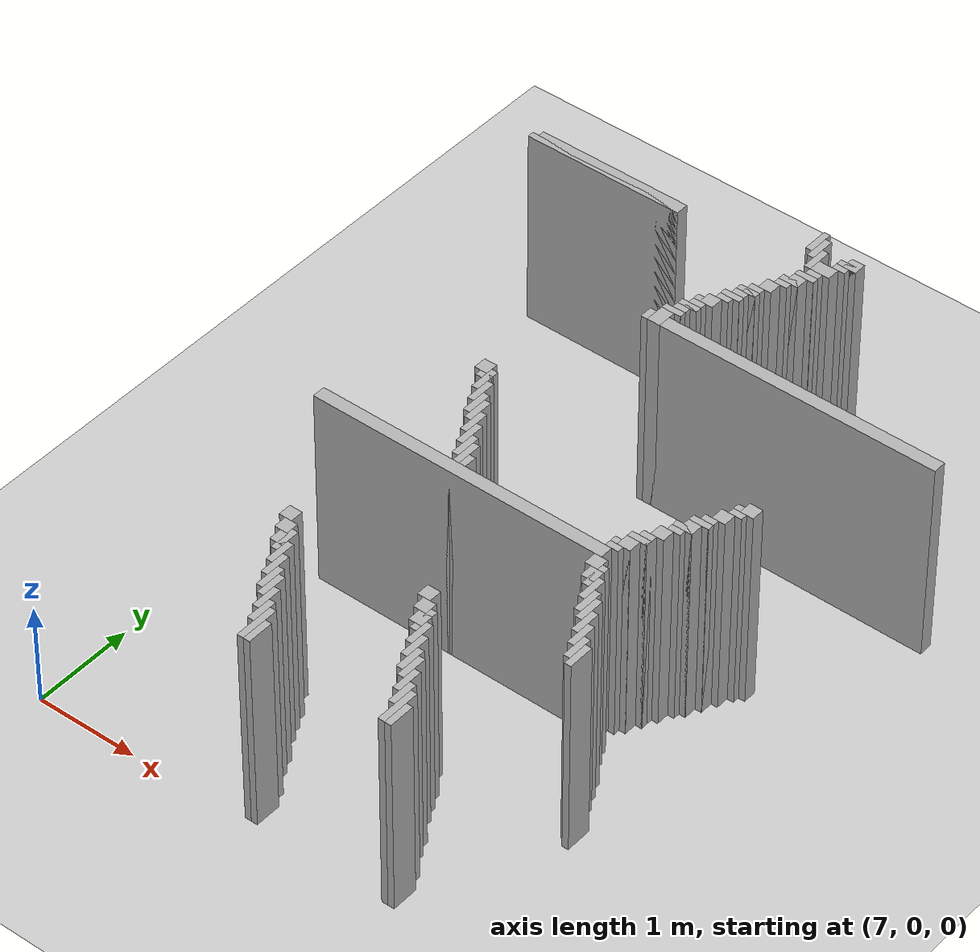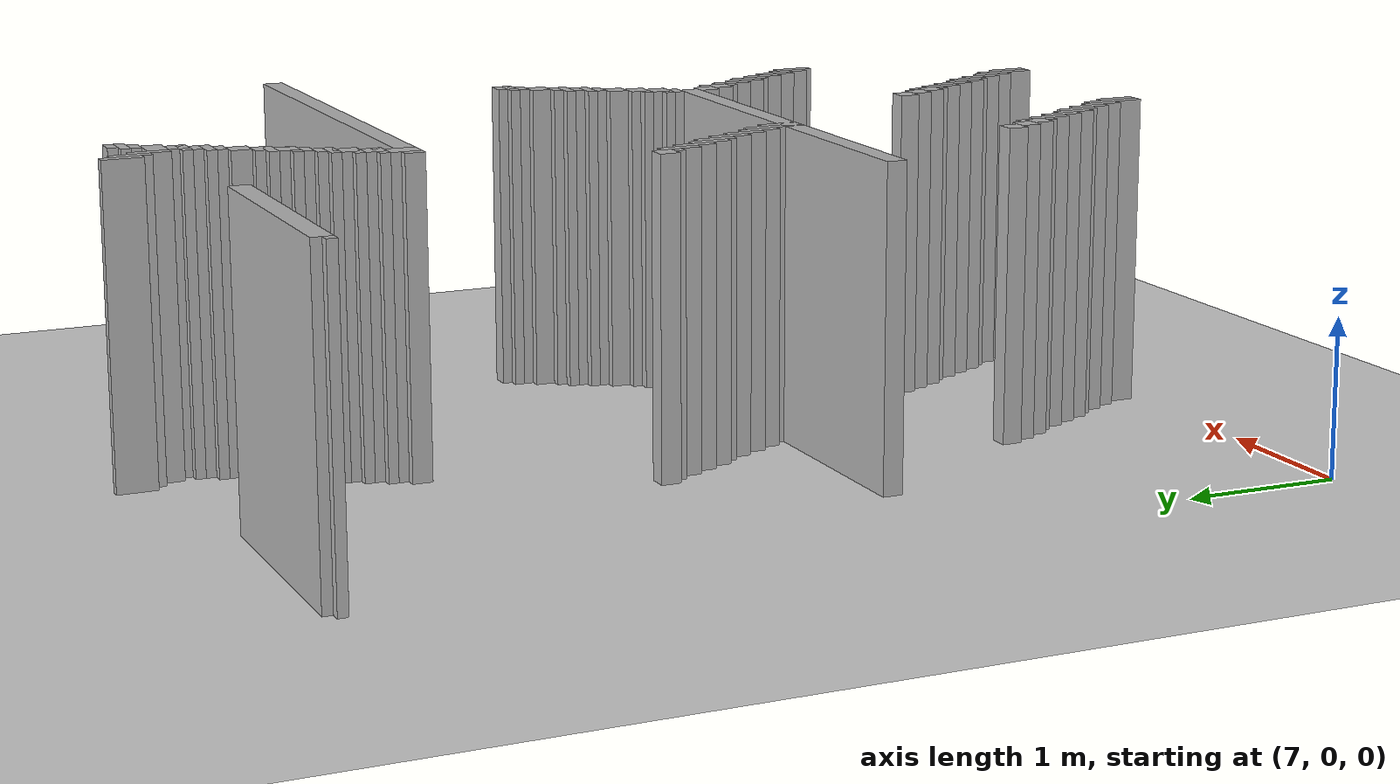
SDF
<sdf version="1.6">
 <world name="slam_world">
  <model name="ground_plane">
   <static>true</static>
   <link name="link">
    <collision name="collision">
     <geometry><plane><normal>0 0 1</normal><size>100 100</size></plane></geometry>
    </collision>
    <visual name="visual">
     <geometry><plane><normal>0 0 1</normal><size>100 100</size></plane></geometry>
     <material>
      <ambient>0.8 0.8 0.8 1</ambient>
      <diffuse>0.8 0.8 0.8 1</diffuse>
      <specular>0.8 0.8 0.8 1</specular>
     </material>
    </visual>
   </link>
  </model>
  <model name="wall_1690">
   <static>true</static>
   <pose>9.734042553191488 6.574468085106383 1.0 0 0 0</pose>
   <link name="link">
    <collision name="collision">
     <geometry><box><size>0.06382978723404255 0.2553191489361702 2.0</size></box></geometry>
    </collision>
    <visual name="visual">
     <geometry><box><size>0.06382978723404255 0.2553191489361702 2.0</size></box></geometry>
     <material><ambient>0.5 0.5 0.5 1</ambient><diffuse>0.7 0.7 0.7 1</diffuse></material>
    </visual>
   </link>
  </model>
  <model name="wall_1698">
   <static>true</static>
   <pose>9.797872340425531 6.51063829787234 1.0 0 0 0</pose>
   <link name="link">
    <collision name="collision">
     <geometry><box><size>0.06382978723404255 0.2553191489361702 2.0</size></box></geometry>
    </collision>
    <visual name="visual">
     <geometry><box><size>0.06382978723404255 0.2553191489361702 2.0</size></box></geometry>
     <material><ambient>0.5 0.5 0.5 1</ambient><diffuse>0.7 0.7 0.7 1</diffuse></material>
    </visual>
   </link>
  </model>
  <model name="wall_1705">
   <static>true</static>
   <pose>10.148936170212766 6.51063829787234 1.0 0 0 0</pose>
   <link name="link">
    <collision name="collision">
     <geometry><box><size>0.1276595744680851 0.1276595744680851 2.0</size></box></geometry>
    </collision>
    <visual name="visual">
     <geometry><box><size>0.1276595744680851 0.1276595744680851 2.0</size></box></geometry>
     <material><ambient>0.5 0.5 0.5 1</ambient><diffuse>0.7 0.7 0.7 1</diffuse></material>
    </visual>
   </link>
  </model>
  <model name="wall_1710">
   <static>true</static>
   <pose>9.861702127659573 6.382978723404255 1.0 0 0 0</pose>
   <link name="link">
    <collision name="collision">
     <geometry><box><size>0.06382978723404255 0.2553191489361702 2.0</size></box></geometry>
    </collision>
    <visual name="visual">
     <geometry><box><size>0.06382978723404255 0.2553191489361702 2.0</size></box></geometry>
     <material><ambient>0.5 0.5 0.5 1</ambient><diffuse>0.7 0.7 0.7 1</diffuse></material>
    </visual>
   </link>
  </model>
  <model name="wall_1711">
   <static>true</static>
   <pose>10.117021276595743 6.478723404255319 1.0 0 0 0</pose>
   <link name="link">
    <collision name="collision">
     <geometry><box><size>0.19148936170212766 0.06382978723404255 2.0</size></box></geometry>
    </collision>
    <visual name="visual">
     <geometry><box><size>0.19148936170212766 0.06382978723404255 2.0</size></box></geometry>
     <material><ambient>0.5 0.5 0.5 1</ambient><diffuse>0.7 0.7 0.7 1</diffuse></material>
    </visual>
   </link>
  </model>
  <model name="wall_1717">
   <static>true</static>
   <pose>10.085106382978722 6.414893617021276 1.0 0 0 0</pose>
   <link name="link">
    <collision name="collision">
     <geometry><box><size>0.1276595744680851 0.06382978723404255 2.0</size></box></geometry>
    </collision>
    <visual name="visual">
     <geometry><box><size>0.1276595744680851 0.06382978723404255 2.0</size></box></geometry>
     <material><ambient>0.5 0.5 0.5 1</ambient><diffuse>0.7 0.7 0.7 1</diffuse></material>
    </visual>
   </link>
  </model>
  <model name="wall_1722">
   <static>true</static>
   <pose>9.989361702127658 6.319148936170213 1.0 0 0 0</pose>
   <link name="link">
    <collision name="collision">
     <geometry><box><size>0.19148936170212766 0.1276595744680851 2.0</size></box></geometry>
    </collision>
    <visual name="visual">
     <geometry><box><size>0.19148936170212766 0.1276595744680851 2.0</size></box></geometry>
     <material><ambient>0.5 0.5 0.5 1</ambient><diffuse>0.7 0.7 0.7 1</diffuse></material>
    </visual>
   </link>
  </model>
  <model name="wall_1729">
   <static>true</static>
   <pose>7.8510638297872335 6.191489361702128 1.0 0 0 0</pose>
   <link name="link">
    <collision name="collision">
     <geometry><box><size>1.5319148936170213 0.1276595744680851 2.0</size></box></geometry>
    </collision>
    <visual name="visual">
     <geometry><box><size>1.5319148936170213 0.1276595744680851 2.0</size></box></geometry>
     <material><ambient>0.5 0.5 0.5 1</ambient><diffuse>0.7 0.7 0.7 1</diffuse></material>
    </visual>
   </link>
  </model>
  <model name="wall_1730">
   <static>true</static>
   <pose>9.957446808510637 6.191489361702128 1.0 0 0 0</pose>
   <link name="link">
    <collision name="collision">
     <geometry><box><size>0.1276595744680851 0.1276595744680851 2.0</size></box></geometry>
    </collision>
    <visual name="visual">
     <geometry><box><size>0.1276595744680851 0.1276595744680851 2.0</size></box></geometry>
     <material><ambient>0.5 0.5 0.5 1</ambient><diffuse>0.7 0.7 0.7 1</diffuse></material>
    </visual>
   </link>
  </model>
  <model name="wall_1734">
   <static>true</static>
   <pose>7.819148936170212 6.159574468085106 1.0 0 0 0</pose>
   <link name="link">
    <collision name="collision">
     <geometry><box><size>1.5957446808510638 0.06382978723404255 2.0</size></box></geometry>
    </collision>
    <visual name="visual">
     <geometry><box><size>1.5957446808510638 0.06382978723404255 2.0</size></box></geometry>
     <material><ambient>0.5 0.5 0.5 1</ambient><diffuse>0.7 0.7 0.7 1</diffuse></material>
    </visual>
   </link>
  </model>
  <model name="wall_1735">
   <static>true</static>
   <pose>9.925531914893616 6.159574468085106 1.0 0 0 0</pose>
   <link name="link">
    <collision name="collision">
     <geometry><box><size>0.19148936170212766 0.06382978723404255 2.0</size></box></geometry>
    </collision>
    <visual name="visual">
     <geometry><box><size>0.19148936170212766 0.06382978723404255 2.0</size></box></geometry>
     <material><ambient>0.5 0.5 0.5 1</ambient><diffuse>0.7 0.7 0.7 1</diffuse></material>
    </visual>
   </link>
  </model>
  <model name="wall_1741">
   <static>true</static>
   <pose>9.893617021276595 6.063829787234042 1.0 0 0 0</pose>
   <link name="link">
    <collision name="collision">
     <geometry><box><size>0.1276595744680851 0.1276595744680851 2.0</size></box></geometry>
    </collision>
    <visual name="visual">
     <geometry><box><size>0.1276595744680851 0.1276595744680851 2.0</size></box></geometry>
     <material><ambient>0.5 0.5 0.5 1</ambient><diffuse>0.7 0.7 0.7 1</diffuse></material>
    </visual>
   </link>
  </model>
  <model name="wall_1746">
   <static>true</static>
   <pose>9.861702127659573 6.031914893617021 1.0 0 0 0</pose>
   <link name="link">
    <collision name="collision">
     <geometry><box><size>0.19148936170212766 0.06382978723404255 2.0</size></box></geometry>
    </collision>
    <visual name="visual">
     <geometry><box><size>0.19148936170212766 0.06382978723404255 2.0</size></box></geometry>
     <material><ambient>0.5 0.5 0.5 1</ambient><diffuse>0.7 0.7 0.7 1</diffuse></material>
    </visual>
   </link>
  </model>
  <model name="wall_1753">
   <static>true</static>
   <pose>9.829787234042552 5.968085106382978 1.0 0 0 0</pose>
   <link name="link">
    <collision name="collision">
     <geometry><box><size>0.1276595744680851 0.06382978723404255 2.0</size></box></geometry>
    </collision>
    <visual name="visual">
     <geometry><box><size>0.1276595744680851 0.06382978723404255 2.0</size></box></geometry>
     <material><ambient>0.5 0.5 0.5 1</ambient><diffuse>0.7 0.7 0.7 1</diffuse></material>
    </visual>
   </link>
  </model>
  <model name="wall_1762">
   <static>true</static>
   <pose>9.76595744680851 5.872340425531914 1.0 0 0 0</pose>
   <link name="link">
    <collision name="collision">
     <geometry><box><size>0.1276595744680851 0.1276595744680851 2.0</size></box></geometry>
    </collision>
    <visual name="visual">
     <geometry><box><size>0.1276595744680851 0.1276595744680851 2.0</size></box></geometry>
     <material><ambient>0.5 0.5 0.5 1</ambient><diffuse>0.7 0.7 0.7 1</diffuse></material>
    </visual>
   </link>
  </model>
  <model name="wall_1771">
   <static>true</static>
   <pose>9.702127659574467 5.744680851063829 1.0 0 0 0</pose>
   <link name="link">
    <collision name="collision">
     <geometry><box><size>0.1276595744680851 0.1276595744680851 2.0</size></box></geometry>
    </collision>
    <visual name="visual">
     <geometry><box><size>0.1276595744680851 0.1276595744680851 2.0</size></box></geometry>
     <material><ambient>0.5 0.5 0.5 1</ambient><diffuse>0.7 0.7 0.7 1</diffuse></material>
    </visual>
   </link>
  </model>
  <model name="wall_1780">
   <static>true</static>
   <pose>9.670212765957446 5.712765957446808 1.0 0 0 0</pose>
   <link name="link">
    <collision name="collision">
     <geometry><box><size>0.19148936170212766 0.06382978723404255 2.0</size></box></geometry>
    </collision>
    <visual name="visual">
     <geometry><box><size>0.19148936170212766 0.06382978723404255 2.0</size></box></geometry>
     <material><ambient>0.5 0.5 0.5 1</ambient><diffuse>0.7 0.7 0.7 1</diffuse></material>
    </visual>
   </link>
  </model>
  <model name="wall_1787">
   <static>true</static>
   <pose>9.638297872340425 5.617021276595744 1.0 0 0 0</pose>
   <link name="link">
    <collision name="collision">
     <geometry><box><size>0.1276595744680851 0.1276595744680851 2.0</size></box></geometry>
    </collision>
    <visual name="visual">
     <geometry><box><size>0.1276595744680851 0.1276595744680851 2.0</size></box></geometry>
     <material><ambient>0.5 0.5 0.5 1</ambient><diffuse>0.7 0.7 0.7 1</diffuse></material>
    </visual>
   </link>
  </model>
  <model name="wall_1795">
   <static>true</static>
   <pose>9.606382978723403 5.585106382978723 1.0 0 0 0</pose>
   <link name="link">
    <collision name="collision">
     <geometry><box><size>0.19148936170212766 0.06382978723404255 2.0</size></box></geometry>
    </collision>
    <visual name="visual">
     <geometry><box><size>0.19148936170212766 0.06382978723404255 2.0</size></box></geometry>
     <material><ambient>0.5 0.5 0.5 1</ambient><diffuse>0.7 0.7 0.7 1</diffuse></material>
    </visual>
   </link>
  </model>
  <model name="wall_1802">
   <static>true</static>
   <pose>9.574468085106382 5.5212765957446805 1.0 0 0 0</pose>
   <link name="link">
    <collision name="collision">
     <geometry><box><size>0.1276595744680851 0.06382978723404255 2.0</size></box></geometry>
    </collision>
    <visual name="visual">
     <geometry><box><size>0.1276595744680851 0.06382978723404255 2.0</size></box></geometry>
     <material><ambient>0.5 0.5 0.5 1</ambient><diffuse>0.7 0.7 0.7 1</diffuse></material>
    </visual>
   </link>
  </model>
  <model name="wall_1809">
   <static>true</static>
   <pose>9.51063829787234 5.425531914893616 1.0 0 0 0</pose>
   <link name="link">
    <collision name="collision">
     <geometry><box><size>0.1276595744680851 0.1276595744680851 2.0</size></box></geometry>
    </collision>
    <visual name="visual">
     <geometry><box><size>0.1276595744680851 0.1276595744680851 2.0</size></box></geometry>
     <material><ambient>0.5 0.5 0.5 1</ambient><diffuse>0.7 0.7 0.7 1</diffuse></material>
    </visual>
   </link>
  </model>
  <model name="wall_1816">
   <static>true</static>
   <pose>9.478723404255318 5.3936170212765955 1.0 0 0 0</pose>
   <link name="link">
    <collision name="collision">
     <geometry><box><size>0.19148936170212766 0.06382978723404255 2.0</size></box></geometry>
    </collision>
    <visual name="visual">
     <geometry><box><size>0.19148936170212766 0.06382978723404255 2.0</size></box></geometry>
     <material><ambient>0.5 0.5 0.5 1</ambient><diffuse>0.7 0.7 0.7 1</diffuse></material>
    </visual>
   </link>
  </model>
  <model name="wall_1823">
   <static>true</static>
   <pose>9.446808510638297 5.297872340425531 1.0 0 0 0</pose>
   <link name="link">
    <collision name="collision">
     <geometry><box><size>0.1276595744680851 0.1276595744680851 2.0</size></box></geometry>
    </collision>
    <visual name="visual">
     <geometry><box><size>0.1276595744680851 0.1276595744680851 2.0</size></box></geometry>
     <material><ambient>0.5 0.5 0.5 1</ambient><diffuse>0.7 0.7 0.7 1</diffuse></material>
    </visual>
   </link>
  </model>
  <model name="wall_1832">
   <static>true</static>
   <pose>9.414893617021276 5.26595744680851 1.0 0 0 0</pose>
   <link name="link">
    <collision name="collision">
     <geometry><box><size>0.19148936170212766 0.06382978723404255 2.0</size></box></geometry>
    </collision>
    <visual name="visual">
     <geometry><box><size>0.19148936170212766 0.06382978723404255 2.0</size></box></geometry>
     <material><ambient>0.5 0.5 0.5 1</ambient><diffuse>0.7 0.7 0.7 1</diffuse></material>
    </visual>
   </link>
  </model>
  <model name="wall_1839">
   <static>true</static>
   <pose>9.382978723404255 5.170212765957446 1.0 0 0 0</pose>
   <link name="link">
    <collision name="collision">
     <geometry><box><size>0.1276595744680851 0.1276595744680851 2.0</size></box></geometry>
    </collision>
    <visual name="visual">
     <geometry><box><size>0.1276595744680851 0.1276595744680851 2.0</size></box></geometry>
     <material><ambient>0.5 0.5 0.5 1</ambient><diffuse>0.7 0.7 0.7 1</diffuse></material>
    </visual>
   </link>
  </model>
  <model name="wall_1846">
   <static>true</static>
   <pose>9.351063829787233 5.138297872340425 1.0 0 0 0</pose>
   <link name="link">
    <collision name="collision">
     <geometry><box><size>0.19148936170212766 0.06382978723404255 2.0</size></box></geometry>
    </collision>
    <visual name="visual">
     <geometry><box><size>0.19148936170212766 0.06382978723404255 2.0</size></box></geometry>
     <material><ambient>0.5 0.5 0.5 1</ambient><diffuse>0.7 0.7 0.7 1</diffuse></material>
    </visual>
   </link>
  </model>
  <model name="wall_1853">
   <static>true</static>
   <pose>9.319148936170212 5.01063829787234 1.0 0 0 0</pose>
   <link name="link">
    <collision name="collision">
     <geometry><box><size>0.1276595744680851 0.19148936170212766 2.0</size></box></geometry>
    </collision>
    <visual name="visual">
     <geometry><box><size>0.1276595744680851 0.19148936170212766 2.0</size></box></geometry>
     <material><ambient>0.5 0.5 0.5 1</ambient><diffuse>0.7 0.7 0.7 1</diffuse></material>
    </visual>
   </link>
  </model>
  <model name="wall_1859">
   <static>true</static>
   <pose>10.659574468085106 4.978723404255319 1.0 0 0 0</pose>
   <link name="link">
    <collision name="collision">
     <geometry><box><size>2.936170212765957 0.1276595744680851 2.0</size></box></geometry>
    </collision>
    <visual name="visual">
     <geometry><box><size>2.936170212765957 0.1276595744680851 2.0</size></box></geometry>
     <material><ambient>0.5 0.5 0.5 1</ambient><diffuse>0.7 0.7 0.7 1</diffuse></material>
    </visual>
   </link>
  </model>
  <model name="wall_1964">
   <static>true</static>
   <pose>8.617021276595745 3.6382978723404253 1.0 0 0 0</pose>
   <link name="link">
    <collision name="collision">
     <geometry><box><size>0.1276595744680851 0.1276595744680851 2.0</size></box></geometry>
    </collision>
    <visual name="visual">
     <geometry><box><size>0.1276595744680851 0.1276595744680851 2.0</size></box></geometry>
     <material><ambient>0.5 0.5 0.5 1</ambient><diffuse>0.7 0.7 0.7 1</diffuse></material>
    </visual>
   </link>
  </model>
  <model name="wall_1965">
   <static>true</static>
   <pose>11.297872340425531 3.6382978723404253 1.0 0 0 0</pose>
   <link name="link">
    <collision name="collision">
     <geometry><box><size>0.1276595744680851 0.1276595744680851 2.0</size></box></geometry>
    </collision>
    <visual name="visual">
     <geometry><box><size>0.1276595744680851 0.1276595744680851 2.0</size></box></geometry>
     <material><ambient>0.5 0.5 0.5 1</ambient><diffuse>0.7 0.7 0.7 1</diffuse></material>
    </visual>
   </link>
  </model>
  <model name="wall_1971">
   <static>true</static>
   <pose>8.712765957446807 3.5106382978723403 1.0 0 0 0</pose>
   <link name="link">
    <collision name="collision">
     <geometry><box><size>0.06382978723404255 0.2553191489361702 2.0</size></box></geometry>
    </collision>
    <visual name="visual">
     <geometry><box><size>0.06382978723404255 0.2553191489361702 2.0</size></box></geometry>
     <material><ambient>0.5 0.5 0.5 1</ambient><diffuse>0.7 0.7 0.7 1</diffuse></material>
    </visual>
   </link>
  </model>
  <model name="wall_1972">
   <static>true</static>
   <pose>11.26595744680851 3.606382978723404 1.0 0 0 0</pose>
   <link name="link">
    <collision name="collision">
     <geometry><box><size>0.19148936170212766 0.06382978723404255 2.0</size></box></geometry>
    </collision>
    <visual name="visual">
     <geometry><box><size>0.19148936170212766 0.06382978723404255 2.0</size></box></geometry>
     <material><ambient>0.5 0.5 0.5 1</ambient><diffuse>0.7 0.7 0.7 1</diffuse></material>
    </visual>
   </link>
  </model>
  <model name="wall_1977">
   <static>true</static>
   <pose>8.680851063829786 3.5425531914893615 1.0 0 0 0</pose>
   <link name="link">
    <collision name="collision">
     <geometry><box><size>0.1276595744680851 0.06382978723404255 2.0</size></box></geometry>
    </collision>
    <visual name="visual">
     <geometry><box><size>0.1276595744680851 0.06382978723404255 2.0</size></box></geometry>
     <material><ambient>0.5 0.5 0.5 1</ambient><diffuse>0.7 0.7 0.7 1</diffuse></material>
    </visual>
   </link>
  </model>
  <model name="wall_1978">
   <static>true</static>
   <pose>11.234042553191488 3.5425531914893615 1.0 0 0 0</pose>
   <link name="link">
    <collision name="collision">
     <geometry><box><size>0.1276595744680851 0.06382978723404255 2.0</size></box></geometry>
    </collision>
    <visual name="visual">
     <geometry><box><size>0.1276595744680851 0.06382978723404255 2.0</size></box></geometry>
     <material><ambient>0.5 0.5 0.5 1</ambient><diffuse>0.7 0.7 0.7 1</diffuse></material>
    </visual>
   </link>
  </model>
  <model name="wall_1982">
   <static>true</static>
   <pose>8.77659574468085 3.382978723404255 1.0 0 0 0</pose>
   <link name="link">
    <collision name="collision">
     <geometry><box><size>0.06382978723404255 0.2553191489361702 2.0</size></box></geometry>
    </collision>
    <visual name="visual">
     <geometry><box><size>0.06382978723404255 0.2553191489361702 2.0</size></box></geometry>
     <material><ambient>0.5 0.5 0.5 1</ambient><diffuse>0.7 0.7 0.7 1</diffuse></material>
    </visual>
   </link>
  </model>
  <model name="wall_1983">
   <static>true</static>
   <pose>11.170212765957446 3.4468085106382977 1.0 0 0 0</pose>
   <link name="link">
    <collision name="collision">
     <geometry><box><size>0.1276595744680851 0.1276595744680851 2.0</size></box></geometry>
    </collision>
    <visual name="visual">
     <geometry><box><size>0.1276595744680851 0.1276595744680851 2.0</size></box></geometry>
     <material><ambient>0.5 0.5 0.5 1</ambient><diffuse>0.7 0.7 0.7 1</diffuse></material>
    </visual>
   </link>
  </model>
  <model name="wall_1989">
   <static>true</static>
   <pose>8.840425531914892 3.25531914893617 1.0 0 0 0</pose>
   <link name="link">
    <collision name="collision">
     <geometry><box><size>0.06382978723404255 0.2553191489361702 2.0</size></box></geometry>
    </collision>
    <visual name="visual">
     <geometry><box><size>0.06382978723404255 0.2553191489361702 2.0</size></box></geometry>
     <material><ambient>0.5 0.5 0.5 1</ambient><diffuse>0.7 0.7 0.7 1</diffuse></material>
    </visual>
   </link>
  </model>
  <model name="wall_1990">
   <static>true</static>
   <pose>11.106382978723403 3.3191489361702127 1.0 0 0 0</pose>
   <link name="link">
    <collision name="collision">
     <geometry><box><size>0.1276595744680851 0.1276595744680851 2.0</size></box></geometry>
    </collision>
    <visual name="visual">
     <geometry><box><size>0.1276595744680851 0.1276595744680851 2.0</size></box></geometry>
     <material><ambient>0.5 0.5 0.5 1</ambient><diffuse>0.7 0.7 0.7 1</diffuse></material>
    </visual>
   </link>
  </model>
  <model name="wall_1996">
   <static>true</static>
   <pose>8.904255319148936 3.1914893617021276 1.0 0 0 0</pose>
   <link name="link">
    <collision name="collision">
     <geometry><box><size>0.06382978723404255 0.2553191489361702 2.0</size></box></geometry>
    </collision>
    <visual name="visual">
     <geometry><box><size>0.06382978723404255 0.2553191489361702 2.0</size></box></geometry>
     <material><ambient>0.5 0.5 0.5 1</ambient><diffuse>0.7 0.7 0.7 1</diffuse></material>
    </visual>
   </link>
  </model>
  <model name="wall_1997">
   <static>true</static>
   <pose>11.074468085106382 3.2872340425531914 1.0 0 0 0</pose>
   <link name="link">
    <collision name="collision">
     <geometry><box><size>0.19148936170212766 0.06382978723404255 2.0</size></box></geometry>
    </collision>
    <visual name="visual">
     <geometry><box><size>0.19148936170212766 0.06382978723404255 2.0</size></box></geometry>
     <material><ambient>0.5 0.5 0.5 1</ambient><diffuse>0.7 0.7 0.7 1</diffuse></material>
    </visual>
   </link>
  </model>
  <model name="wall_2000">
   <static>true</static>
   <pose>11.042553191489361 3.1914893617021276 1.0 0 0 0</pose>
   <link name="link">
    <collision name="collision">
     <geometry><box><size>0.1276595744680851 0.1276595744680851 2.0</size></box></geometry>
    </collision>
    <visual name="visual">
     <geometry><box><size>0.1276595744680851 0.1276595744680851 2.0</size></box></geometry>
     <material><ambient>0.5 0.5 0.5 1</ambient><diffuse>0.7 0.7 0.7 1</diffuse></material>
    </visual>
   </link>
  </model>
  <model name="wall_2004">
   <static>true</static>
   <pose>8.968085106382977 3.0638297872340425 1.0 0 0 0</pose>
   <link name="link">
    <collision name="collision">
     <geometry><box><size>0.06382978723404255 0.2553191489361702 2.0</size></box></geometry>
    </collision>
    <visual name="visual">
     <geometry><box><size>0.06382978723404255 0.2553191489361702 2.0</size></box></geometry>
     <material><ambient>0.5 0.5 0.5 1</ambient><diffuse>0.7 0.7 0.7 1</diffuse></material>
    </visual>
   </link>
  </model>
  <model name="wall_2005">
   <static>true</static>
   <pose>11.01063829787234 3.1595744680851063 1.0 0 0 0</pose>
   <link name="link">
    <collision name="collision">
     <geometry><box><size>0.19148936170212766 0.06382978723404255 2.0</size></box></geometry>
    </collision>
    <visual name="visual">
     <geometry><box><size>0.19148936170212766 0.06382978723404255 2.0</size></box></geometry>
     <material><ambient>0.5 0.5 0.5 1</ambient><diffuse>0.7 0.7 0.7 1</diffuse></material>
    </visual>
   </link>
  </model>
  <model name="wall_2008">
   <static>true</static>
   <pose>10.978723404255318 3.095744680851064 1.0 0 0 0</pose>
   <link name="link">
    <collision name="collision">
     <geometry><box><size>0.1276595744680851 0.06382978723404255 2.0</size></box></geometry>
    </collision>
    <visual name="visual">
     <geometry><box><size>0.1276595744680851 0.06382978723404255 2.0</size></box></geometry>
     <material><ambient>0.5 0.5 0.5 1</ambient><diffuse>0.7 0.7 0.7 1</diffuse></material>
    </visual>
   </link>
  </model>
  <model name="wall_2012">
   <static>true</static>
   <pose>9.03191489361702 2.936170212765957 1.0 0 0 0</pose>
   <link name="link">
    <collision name="collision">
     <geometry><box><size>0.06382978723404255 0.2553191489361702 2.0</size></box></geometry>
    </collision>
    <visual name="visual">
     <geometry><box><size>0.06382978723404255 0.2553191489361702 2.0</size></box></geometry>
     <material><ambient>0.5 0.5 0.5 1</ambient><diffuse>0.7 0.7 0.7 1</diffuse></material>
    </visual>
   </link>
  </model>
  <model name="wall_2013">
   <static>true</static>
   <pose>10.914893617021276 2.9999999999999996 1.0 0 0 0</pose>
   <link name="link">
    <collision name="collision">
     <geometry><box><size>0.1276595744680851 0.1276595744680851 2.0</size></box></geometry>
    </collision>
    <visual name="visual">
     <geometry><box><size>0.1276595744680851 0.1276595744680851 2.0</size></box></geometry>
     <material><ambient>0.5 0.5 0.5 1</ambient><diffuse>0.7 0.7 0.7 1</diffuse></material>
    </visual>
   </link>
  </model>
  <model name="wall_2019">
   <static>true</static>
   <pose>9.095744680851062 2.808510638297872 1.0 0 0 0</pose>
   <link name="link">
    <collision name="collision">
     <geometry><box><size>0.06382978723404255 0.2553191489361702 2.0</size></box></geometry>
    </collision>
    <visual name="visual">
     <geometry><box><size>0.06382978723404255 0.2553191489361702 2.0</size></box></geometry>
     <material><ambient>0.5 0.5 0.5 1</ambient><diffuse>0.7 0.7 0.7 1</diffuse></material>
    </visual>
   </link>
  </model>
  <model name="wall_2020">
   <static>true</static>
   <pose>10.851063829787233 2.8723404255319145 1.0 0 0 0</pose>
   <link name="link">
    <collision name="collision">
     <geometry><box><size>0.1276595744680851 0.1276595744680851 2.0</size></box></geometry>
    </collision>
    <visual name="visual">
     <geometry><box><size>0.1276595744680851 0.1276595744680851 2.0</size></box></geometry>
     <material><ambient>0.5 0.5 0.5 1</ambient><diffuse>0.7 0.7 0.7 1</diffuse></material>
    </visual>
   </link>
  </model>
  <model name="wall_2026">
   <static>true</static>
   <pose>9.159574468085106 2.680851063829787 1.0 0 0 0</pose>
   <link name="link">
    <collision name="collision">
     <geometry><box><size>0.06382978723404255 0.3829787234042553 2.0</size></box></geometry>
    </collision>
    <visual name="visual">
     <geometry><box><size>0.06382978723404255 0.3829787234042553 2.0</size></box></geometry>
     <material><ambient>0.5 0.5 0.5 1</ambient><diffuse>0.7 0.7 0.7 1</diffuse></material>
    </visual>
   </link>
  </model>
  <model name="wall_2027">
   <static>true</static>
   <pose>10.819148936170212 2.840425531914893 1.0 0 0 0</pose>
   <link name="link">
    <collision name="collision">
     <geometry><box><size>0.19148936170212766 0.06382978723404255 2.0</size></box></geometry>
    </collision>
    <visual name="visual">
     <geometry><box><size>0.19148936170212766 0.06382978723404255 2.0</size></box></geometry>
     <material><ambient>0.5 0.5 0.5 1</ambient><diffuse>0.7 0.7 0.7 1</diffuse></material>
    </visual>
   </link>
  </model>
  <model name="wall_2030">
   <static>true</static>
   <pose>10.787234042553191 2.7446808510638294 1.0 0 0 0</pose>
   <link name="link">
    <collision name="collision">
     <geometry><box><size>0.1276595744680851 0.1276595744680851 2.0</size></box></geometry>
    </collision>
    <visual name="visual">
     <geometry><box><size>0.1276595744680851 0.1276595744680851 2.0</size></box></geometry>
     <material><ambient>0.5 0.5 0.5 1</ambient><diffuse>0.7 0.7 0.7 1</diffuse></material>
    </visual>
   </link>
  </model>
  <model name="wall_2034">
   <static>true</static>
   <pose>9.223404255319148 2.6170212765957444 1.0 0 0 0</pose>
   <link name="link">
    <collision name="collision">
     <geometry><box><size>0.06382978723404255 0.2553191489361702 2.0</size></box></geometry>
    </collision>
    <visual name="visual">
     <geometry><box><size>0.06382978723404255 0.2553191489361702 2.0</size></box></geometry>
     <material><ambient>0.5 0.5 0.5 1</ambient><diffuse>0.7 0.7 0.7 1</diffuse></material>
    </visual>
   </link>
  </model>
  <model name="wall_2035">
   <static>true</static>
   <pose>10.75531914893617 2.712765957446808 1.0 0 0 0</pose>
   <link name="link">
    <collision name="collision">
     <geometry><box><size>0.19148936170212766 0.06382978723404255 2.0</size></box></geometry>
    </collision>
    <visual name="visual">
     <geometry><box><size>0.19148936170212766 0.06382978723404255 2.0</size></box></geometry>
     <material><ambient>0.5 0.5 0.5 1</ambient><diffuse>0.7 0.7 0.7 1</diffuse></material>
    </visual>
   </link>
  </model>
  <model name="wall_2038">
   <static>true</static>
   <pose>10.723404255319148 2.6489361702127656 1.0 0 0 0</pose>
   <link name="link">
    <collision name="collision">
     <geometry><box><size>0.1276595744680851 0.06382978723404255 2.0</size></box></geometry>
    </collision>
    <visual name="visual">
     <geometry><box><size>0.1276595744680851 0.06382978723404255 2.0</size></box></geometry>
     <material><ambient>0.5 0.5 0.5 1</ambient><diffuse>0.7 0.7 0.7 1</diffuse></material>
    </visual>
   </link>
  </model>
  <model name="wall_2042">
   <static>true</static>
   <pose>9.25531914893617 2.553191489361702 1.0 0 0 0</pose>
   <link name="link">
    <collision name="collision">
     <geometry><box><size>2.936170212765957 0.1276595744680851 2.0</size></box></geometry>
    </collision>
    <visual name="visual">
     <geometry><box><size>2.936170212765957 0.1276595744680851 2.0</size></box></geometry>
     <material><ambient>0.5 0.5 0.5 1</ambient><diffuse>0.7 0.7 0.7 1</diffuse></material>
    </visual>
   </link>
  </model>
  <model name="wall_2049">
   <static>true</static>
   <pose>10.723404255319148 2.4255319148936167 1.0 0 0 0</pose>
   <link name="link">
    <collision name="collision">
     <geometry><box><size>0.1276595744680851 0.1276595744680851 2.0</size></box></geometry>
    </collision>
    <visual name="visual">
     <geometry><box><size>0.1276595744680851 0.1276595744680851 2.0</size></box></geometry>
     <material><ambient>0.5 0.5 0.5 1</ambient><diffuse>0.7 0.7 0.7 1</diffuse></material>
    </visual>
   </link>
  </model>
  <model name="wall_2055">
   <static>true</static>
   <pose>10.819148936170212 2.2978723404255317 1.0 0 0 0</pose>
   <link name="link">
    <collision name="collision">
     <geometry><box><size>0.06382978723404255 0.2553191489361702 2.0</size></box></geometry>
    </collision>
    <visual name="visual">
     <geometry><box><size>0.06382978723404255 0.2553191489361702 2.0</size></box></geometry>
     <material><ambient>0.5 0.5 0.5 1</ambient><diffuse>0.7 0.7 0.7 1</diffuse></material>
    </visual>
   </link>
  </model>
  <model name="wall_2060">
   <static>true</static>
   <pose>10.787234042553191 2.2978723404255317 1.0 0 0 0</pose>
   <link name="link">
    <collision name="collision">
     <geometry><box><size>0.1276595744680851 0.1276595744680851 2.0</size></box></geometry>
    </collision>
    <visual name="visual">
     <geometry><box><size>0.1276595744680851 0.1276595744680851 2.0</size></box></geometry>
     <material><ambient>0.5 0.5 0.5 1</ambient><diffuse>0.7 0.7 0.7 1</diffuse></material>
    </visual>
   </link>
  </model>
  <model name="wall_2066">
   <static>true</static>
   <pose>10.882978723404255 2.1702127659574466 1.0 0 0 0</pose>
   <link name="link">
    <collision name="collision">
     <geometry><box><size>0.06382978723404255 0.2553191489361702 2.0</size></box></geometry>
    </collision>
    <visual name="visual">
     <geometry><box><size>0.06382978723404255 0.2553191489361702 2.0</size></box></geometry>
     <material><ambient>0.5 0.5 0.5 1</ambient><diffuse>0.7 0.7 0.7 1</diffuse></material>
    </visual>
   </link>
  </model>
  <model name="wall_2074">
   <static>true</static>
   <pose>10.946808510638297 2.0425531914893615 1.0 0 0 0</pose>
   <link name="link">
    <collision name="collision">
     <geometry><box><size>0.06382978723404255 0.2553191489361702 2.0</size></box></geometry>
    </collision>
    <visual name="visual">
     <geometry><box><size>0.06382978723404255 0.2553191489361702 2.0</size></box></geometry>
     <material><ambient>0.5 0.5 0.5 1</ambient><diffuse>0.7 0.7 0.7 1</diffuse></material>
    </visual>
   </link>
  </model>
  <model name="wall_2080">
   <static>true</static>
   <pose>11.01063829787234 1.978723404255319 1.0 0 0 0</pose>
   <link name="link">
    <collision name="collision">
     <geometry><box><size>0.06382978723404255 0.2553191489361702 2.0</size></box></geometry>
    </collision>
    <visual name="visual">
     <geometry><box><size>0.06382978723404255 0.2553191489361702 2.0</size></box></geometry>
     <material><ambient>0.5 0.5 0.5 1</ambient><diffuse>0.7 0.7 0.7 1</diffuse></material>
    </visual>
   </link>
  </model>
  <model name="wall_2088">
   <static>true</static>
   <pose>11.074468085106382 1.851063829787234 1.0 0 0 0</pose>
   <link name="link">
    <collision name="collision">
     <geometry><box><size>0.06382978723404255 0.2553191489361702 2.0</size></box></geometry>
    </collision>
    <visual name="visual">
     <geometry><box><size>0.06382978723404255 0.2553191489361702 2.0</size></box></geometry>
     <material><ambient>0.5 0.5 0.5 1</ambient><diffuse>0.7 0.7 0.7 1</diffuse></material>
    </visual>
   </link>
  </model>
  <model name="wall_2096">
   <static>true</static>
   <pose>11.138297872340425 1.7234042553191489 1.0 0 0 0</pose>
   <link name="link">
    <collision name="collision">
     <geometry><box><size>0.06382978723404255 0.2553191489361702 2.0</size></box></geometry>
    </collision>
    <visual name="visual">
     <geometry><box><size>0.06382978723404255 0.2553191489361702 2.0</size></box></geometry>
     <material><ambient>0.5 0.5 0.5 1</ambient><diffuse>0.7 0.7 0.7 1</diffuse></material>
    </visual>
   </link>
  </model>
  <model name="wall_2102">
   <static>true</static>
   <pose>11.202127659574467 1.5957446808510638 1.0 0 0 0</pose>
   <link name="link">
    <collision name="collision">
     <geometry><box><size>0.06382978723404255 0.2553191489361702 2.0</size></box></geometry>
    </collision>
    <visual name="visual">
     <geometry><box><size>0.06382978723404255 0.2553191489361702 2.0</size></box></geometry>
     <material><ambient>0.5 0.5 0.5 1</ambient><diffuse>0.7 0.7 0.7 1</diffuse></material>
    </visual>
   </link>
  </model>
  <model name="wall_2108">
   <static>true</static>
   <pose>11.26595744680851 1.5319148936170213 1.0 0 0 0</pose>
   <link name="link">
    <collision name="collision">
     <geometry><box><size>0.06382978723404255 0.2553191489361702 2.0</size></box></geometry>
    </collision>
    <visual name="visual">
     <geometry><box><size>0.06382978723404255 0.2553191489361702 2.0</size></box></geometry>
     <material><ambient>0.5 0.5 0.5 1</ambient><diffuse>0.7 0.7 0.7 1</diffuse></material>
    </visual>
   </link>
  </model>
  <model name="wall_2127">
   <static>true</static>
   <pose>8.553191489361701 1.3404255319148934 1.0 0 0 0</pose>
   <link name="link">
    <collision name="collision">
     <geometry><box><size>0.1276595744680851 0.1276595744680851 2.0</size></box></geometry>
    </collision>
    <visual name="visual">
     <geometry><box><size>0.1276595744680851 0.1276595744680851 2.0</size></box></geometry>
     <material><ambient>0.5 0.5 0.5 1</ambient><diffuse>0.7 0.7 0.7 1</diffuse></material>
    </visual>
   </link>
  </model>
  <model name="wall_2128">
   <static>true</static>
   <pose>9.957446808510637 1.3404255319148934 1.0 0 0 0</pose>
   <link name="link">
    <collision name="collision">
     <geometry><box><size>0.1276595744680851 0.1276595744680851 2.0</size></box></geometry>
    </collision>
    <visual name="visual">
     <geometry><box><size>0.1276595744680851 0.1276595744680851 2.0</size></box></geometry>
     <material><ambient>0.5 0.5 0.5 1</ambient><diffuse>0.7 0.7 0.7 1</diffuse></material>
    </visual>
   </link>
  </model>
  <model name="wall_2136">
   <static>true</static>
   <pose>8.617021276595745 1.2127659574468084 1.0 0 0 0</pose>
   <link name="link">
    <collision name="collision">
     <geometry><box><size>0.1276595744680851 0.1276595744680851 2.0</size></box></geometry>
    </collision>
    <visual name="visual">
     <geometry><box><size>0.1276595744680851 0.1276595744680851 2.0</size></box></geometry>
     <material><ambient>0.5 0.5 0.5 1</ambient><diffuse>0.7 0.7 0.7 1</diffuse></material>
    </visual>
   </link>
  </model>
  <model name="wall_2137">
   <static>true</static>
   <pose>10.02127659574468 1.2127659574468084 1.0 0 0 0</pose>
   <link name="link">
    <collision name="collision">
     <geometry><box><size>0.1276595744680851 0.1276595744680851 2.0</size></box></geometry>
    </collision>
    <visual name="visual">
     <geometry><box><size>0.1276595744680851 0.1276595744680851 2.0</size></box></geometry>
     <material><ambient>0.5 0.5 0.5 1</ambient><diffuse>0.7 0.7 0.7 1</diffuse></material>
    </visual>
   </link>
  </model>
  <model name="wall_2144">
   <static>true</static>
   <pose>8.712765957446807 1.0851063829787233 1.0 0 0 0</pose>
   <link name="link">
    <collision name="collision">
     <geometry><box><size>0.06382978723404255 0.2553191489361702 2.0</size></box></geometry>
    </collision>
    <visual name="visual">
     <geometry><box><size>0.06382978723404255 0.2553191489361702 2.0</size></box></geometry>
     <material><ambient>0.5 0.5 0.5 1</ambient><diffuse>0.7 0.7 0.7 1</diffuse></material>
    </visual>
   </link>
  </model>
  <model name="wall_2145">
   <static>true</static>
   <pose>10.117021276595743 1.0851063829787233 1.0 0 0 0</pose>
   <link name="link">
    <collision name="collision">
     <geometry><box><size>0.06382978723404255 0.2553191489361702 2.0</size></box></geometry>
    </collision>
    <visual name="visual">
     <geometry><box><size>0.06382978723404255 0.2553191489361702 2.0</size></box></geometry>
     <material><ambient>0.5 0.5 0.5 1</ambient><diffuse>0.7 0.7 0.7 1</diffuse></material>
    </visual>
   </link>
  </model>
  <model name="wall_2152">
   <static>true</static>
   <pose>8.680851063829786 1.0851063829787233 1.0 0 0 0</pose>
   <link name="link">
    <collision name="collision">
     <geometry><box><size>0.1276595744680851 0.1276595744680851 2.0</size></box></geometry>
    </collision>
    <visual name="visual">
     <geometry><box><size>0.1276595744680851 0.1276595744680851 2.0</size></box></geometry>
     <material><ambient>0.5 0.5 0.5 1</ambient><diffuse>0.7 0.7 0.7 1</diffuse></material>
    </visual>
   </link>
  </model>
  <model name="wall_2153">
   <static>true</static>
   <pose>10.085106382978722 1.0851063829787233 1.0 0 0 0</pose>
   <link name="link">
    <collision name="collision">
     <geometry><box><size>0.1276595744680851 0.1276595744680851 2.0</size></box></geometry>
    </collision>
    <visual name="visual">
     <geometry><box><size>0.1276595744680851 0.1276595744680851 2.0</size></box></geometry>
     <material><ambient>0.5 0.5 0.5 1</ambient><diffuse>0.7 0.7 0.7 1</diffuse></material>
    </visual>
   </link>
  </model>
  <model name="wall_2159">
   <static>true</static>
   <pose>8.77659574468085 0.9574468085106382 1.0 0 0 0</pose>
   <link name="link">
    <collision name="collision">
     <geometry><box><size>0.06382978723404255 0.2553191489361702 2.0</size></box></geometry>
    </collision>
    <visual name="visual">
     <geometry><box><size>0.06382978723404255 0.2553191489361702 2.0</size></box></geometry>
     <material><ambient>0.5 0.5 0.5 1</ambient><diffuse>0.7 0.7 0.7 1</diffuse></material>
    </visual>
   </link>
  </model>
  <model name="wall_2160">
   <static>true</static>
   <pose>10.180851063829786 0.9574468085106382 1.0 0 0 0</pose>
   <link name="link">
    <collision name="collision">
     <geometry><box><size>0.06382978723404255 0.2553191489361702 2.0</size></box></geometry>
    </collision>
    <visual name="visual">
     <geometry><box><size>0.06382978723404255 0.2553191489361702 2.0</size></box></geometry>
     <material><ambient>0.5 0.5 0.5 1</ambient><diffuse>0.7 0.7 0.7 1</diffuse></material>
    </visual>
   </link>
  </model>
  <model name="wall_2170">
   <static>true</static>
   <pose>8.840425531914892 0.8297872340425532 1.0 0 0 0</pose>
   <link name="link">
    <collision name="collision">
     <geometry><box><size>0.06382978723404255 0.2553191489361702 2.0</size></box></geometry>
    </collision>
    <visual name="visual">
     <geometry><box><size>0.06382978723404255 0.2553191489361702 2.0</size></box></geometry>
     <material><ambient>0.5 0.5 0.5 1</ambient><diffuse>0.7 0.7 0.7 1</diffuse></material>
    </visual>
   </link>
  </model>
  <model name="wall_2171">
   <static>true</static>
   <pose>10.24468085106383 0.8297872340425532 1.0 0 0 0</pose>
   <link name="link">
    <collision name="collision">
     <geometry><box><size>0.06382978723404255 0.2553191489361702 2.0</size></box></geometry>
    </collision>
    <visual name="visual">
     <geometry><box><size>0.06382978723404255 0.2553191489361702 2.0</size></box></geometry>
     <material><ambient>0.5 0.5 0.5 1</ambient><diffuse>0.7 0.7 0.7 1</diffuse></material>
    </visual>
   </link>
  </model>
  <model name="wall_2178">
   <static>true</static>
   <pose>8.904255319148936 0.702127659574468 1.0 0 0 0</pose>
   <link name="link">
    <collision name="collision">
     <geometry><box><size>0.06382978723404255 0.2553191489361702 2.0</size></box></geometry>
    </collision>
    <visual name="visual">
     <geometry><box><size>0.06382978723404255 0.2553191489361702 2.0</size></box></geometry>
     <material><ambient>0.5 0.5 0.5 1</ambient><diffuse>0.7 0.7 0.7 1</diffuse></material>
    </visual>
   </link>
  </model>
  <model name="wall_2179">
   <static>true</static>
   <pose>10.308510638297872 0.702127659574468 1.0 0 0 0</pose>
   <link name="link">
    <collision name="collision">
     <geometry><box><size>0.06382978723404255 0.2553191489361702 2.0</size></box></geometry>
    </collision>
    <visual name="visual">
     <geometry><box><size>0.06382978723404255 0.2553191489361702 2.0</size></box></geometry>
     <material><ambient>0.5 0.5 0.5 1</ambient><diffuse>0.7 0.7 0.7 1</diffuse></material>
    </visual>
   </link>
  </model>
  <model name="wall_2186">
   <static>true</static>
   <pose>8.968085106382977 0.6382978723404255 1.0 0 0 0</pose>
   <link name="link">
    <collision name="collision">
     <geometry><box><size>0.06382978723404255 0.2553191489361702 2.0</size></box></geometry>
    </collision>
    <visual name="visual">
     <geometry><box><size>0.06382978723404255 0.2553191489361702 2.0</size></box></geometry>
     <material><ambient>0.5 0.5 0.5 1</ambient><diffuse>0.7 0.7 0.7 1</diffuse></material>
    </visual>
   </link>
  </model>
  <model name="wall_2187">
   <static>true</static>
   <pose>10.372340425531915 0.6382978723404255 1.0 0 0 0</pose>
   <link name="link">
    <collision name="collision">
     <geometry><box><size>0.06382978723404255 0.2553191489361702 2.0</size></box></geometry>
    </collision>
    <visual name="visual">
     <geometry><box><size>0.06382978723404255 0.2553191489361702 2.0</size></box></geometry>
     <material><ambient>0.5 0.5 0.5 1</ambient><diffuse>0.7 0.7 0.7 1</diffuse></material>
    </visual>
   </link>
  </model>
  <model name="wall_2197">
   <static>true</static>
   <pose>9.03191489361702 0.5106382978723404 1.0 0 0 0</pose>
   <link name="link">
    <collision name="collision">
     <geometry><box><size>0.06382978723404255 0.2553191489361702 2.0</size></box></geometry>
    </collision>
    <visual name="visual">
     <geometry><box><size>0.06382978723404255 0.2553191489361702 2.0</size></box></geometry>
     <material><ambient>0.5 0.5 0.5 1</ambient><diffuse>0.7 0.7 0.7 1</diffuse></material>
    </visual>
   </link>
  </model>
  <model name="wall_2198">
   <static>true</static>
   <pose>10.436170212765957 0.5106382978723404 1.0 0 0 0</pose>
   <link name="link">
    <collision name="collision">
     <geometry><box><size>0.06382978723404255 0.2553191489361702 2.0</size></box></geometry>
    </collision>
    <visual name="visual">
     <geometry><box><size>0.06382978723404255 0.2553191489361702 2.0</size></box></geometry>
     <material><ambient>0.5 0.5 0.5 1</ambient><diffuse>0.7 0.7 0.7 1</diffuse></material>
    </visual>
   </link>
  </model>
  <model name="wall_2208">
   <static>true</static>
   <pose>9.095744680851062 0.3829787234042553 1.0 0 0 0</pose>
   <link name="link">
    <collision name="collision">
     <geometry><box><size>0.06382978723404255 0.2553191489361702 2.0</size></box></geometry>
    </collision>
    <visual name="visual">
     <geometry><box><size>0.06382978723404255 0.2553191489361702 2.0</size></box></geometry>
     <material><ambient>0.5 0.5 0.5 1</ambient><diffuse>0.7 0.7 0.7 1</diffuse></material>
    </visual>
   </link>
  </model>
  <model name="wall_2209">
   <static>true</static>
   <pose>10.5 0.3829787234042553 1.0 0 0 0</pose>
   <link name="link">
    <collision name="collision">
     <geometry><box><size>0.06382978723404255 0.2553191489361702 2.0</size></box></geometry>
    </collision>
    <visual name="visual">
     <geometry><box><size>0.06382978723404255 0.2553191489361702 2.0</size></box></geometry>
     <material><ambient>0.5 0.5 0.5 1</ambient><diffuse>0.7 0.7 0.7 1</diffuse></material>
    </visual>
   </link>
  </model>
  <model name="wall_2216">
   <static>true</static>
   <pose>9.159574468085106 0.2553191489361702 1.0 0 0 0</pose>
   <link name="link">
    <collision name="collision">
     <geometry><box><size>0.06382978723404255 0.3829787234042553 2.0</size></box></geometry>
    </collision>
    <visual name="visual">
     <geometry><box><size>0.06382978723404255 0.3829787234042553 2.0</size></box></geometry>
     <material><ambient>0.5 0.5 0.5 1</ambient><diffuse>0.7 0.7 0.7 1</diffuse></material>
    </visual>
   </link>
  </model>
  <model name="wall_2217">
   <static>true</static>
   <pose>10.563829787234042 0.2553191489361702 1.0 0 0 0</pose>
   <link name="link">
    <collision name="collision">
     <geometry><box><size>0.06382978723404255 0.3829787234042553 2.0</size></box></geometry>
    </collision>
    <visual name="visual">
     <geometry><box><size>0.06382978723404255 0.3829787234042553 2.0</size></box></geometry>
     <material><ambient>0.5 0.5 0.5 1</ambient><diffuse>0.7 0.7 0.7 1</diffuse></material>
    </visual>
   </link>
  </model>
  <model name="wall_2226">
   <static>true</static>
   <pose>9.223404255319148 0.19148936170212766 1.0 0 0 0</pose>
   <link name="link">
    <collision name="collision">
     <geometry><box><size>0.06382978723404255 0.2553191489361702 2.0</size></box></geometry>
    </collision>
    <visual name="visual">
     <geometry><box><size>0.06382978723404255 0.2553191489361702 2.0</size></box></geometry>
     <material><ambient>0.5 0.5 0.5 1</ambient><diffuse>0.7 0.7 0.7 1</diffuse></material>
    </visual>
   </link>
  </model>
  <model name="wall_2227">
   <static>true</static>
   <pose>10.627659574468085 0.19148936170212766 1.0 0 0 0</pose>
   <link name="link">
    <collision name="collision">
     <geometry><box><size>0.06382978723404255 0.2553191489361702 2.0</size></box></geometry>
    </collision>
    <visual name="visual">
     <geometry><box><size>0.06382978723404255 0.2553191489361702 2.0</size></box></geometry>
     <material><ambient>0.5 0.5 0.5 1</ambient><diffuse>0.7 0.7 0.7 1</diffuse></material>
    </visual>
   </link>
  </model>
 </world>
</sdf>
